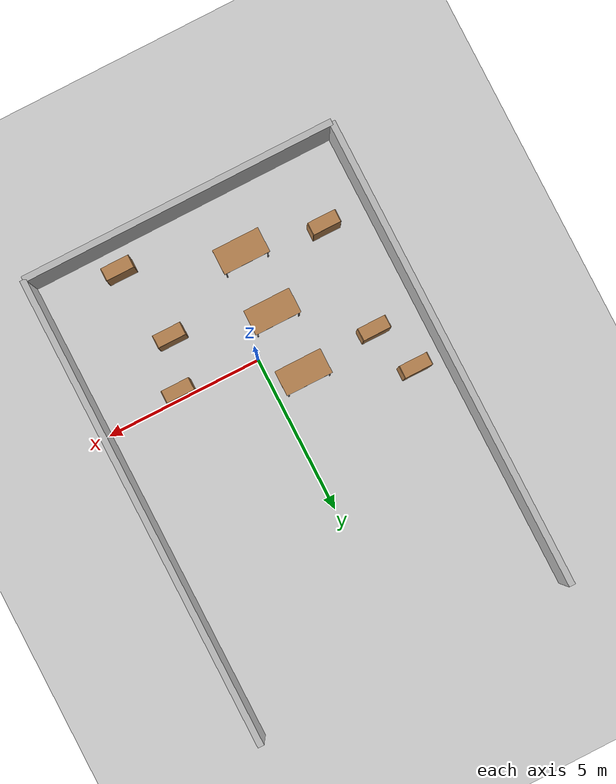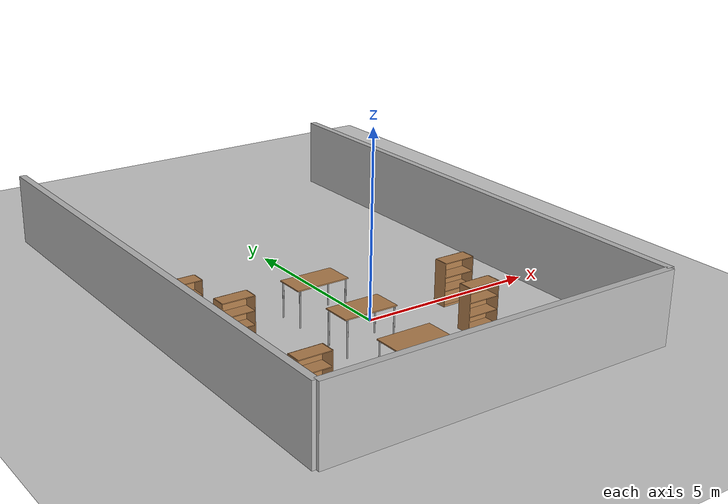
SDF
<sdf version="1.4">
 <world name="default">
  <model name="ground_plane">
   <static>1</static>
   <link name="link">
    <collision name="collision">
     <geometry>
      <plane><normal>0.000000 0.000000 1.000000</normal><size>100.000000 100.000000</size></plane>
     </geometry>
     <surface><friction><ode><mu>100.000000</mu><mu2>50.000000</mu2></ode></friction></surface>
    </collision>
    <visual name="visual">
     <cast_shadows>0</cast_shadows>
     <geometry>
      <plane><normal>0.000000 0.000000 1.000000</normal><size>100.000000 100.000000</size></plane>
     </geometry>
     <material>
      <script><uri>file://media/materials/scripts/gazebo.material</uri><name>Gazebo/Grey</name></script>
     </material>
    </visual>
    <velocity_decay><linear>0.000000</linear><angular>0.000000</angular></velocity_decay>
   </link>
  </model>
  <model name="wall_1_model">
   <pose>0.000000 -5.000000 1.000000 0.000000 0.000000 0.000000</pose>
   <static>1</static>
   <link name="wall_1_body">
    <inertial>
     <mass>1.000000</mass>
     <inertia>
      <ixx>1.000000</ixx>
      <ixy>0.000000</ixy>
      <ixz>0.000000</ixz>
      <iyy>1.000000</iyy>
      <iyz>0.000000</iyz>
      <izz>1.000000</izz>
     </inertia>
    </inertial>
    <collision name="collision">
     <geometry><box><size>10.000000 0.200000 2.000000</size></box></geometry>
    </collision>
    <visual name="visual"><geometry><box><size>10.000000 0.200000 2.000000</size></box></geometry></visual>
    <velocity_decay><linear>0.000000</linear><angular>0.000000</angular></velocity_decay>
   </link>
  </model>
  <model name="wall_3_model">
   <pose>-5.000000 2.500000 1.000000 0.000000 0.000000 0.000000</pose>
   <static>1</static>
   <link name="wall_3_body">
    <inertial>
     <mass>1.000000</mass>
     <inertia>
      <ixx>1.000000</ixx>
      <ixy>0.000000</ixy>
      <ixz>0.000000</ixz>
      <iyy>1.000000</iyy>
      <iyz>0.000000</iyz>
      <izz>1.000000</izz>
     </inertia>
    </inertial>
    <collision name="collision">
     <geometry><box><size>0.200000 15.000000 2.000000</size></box></geometry>
    </collision>
    <visual name="visual"><geometry><box><size>0.200000 15.000000 2.000000</size></box></geometry></visual>
    <velocity_decay><linear>0.000000</linear><angular>0.000000</angular></velocity_decay>
   </link>
  </model>
  <model name="wall_4_model">
   <pose>5.000000 2.500000 1.000000 0.000000 0.000000 0.000000</pose>
   <static>1</static>
   <link name="wall_4_body">
    <inertial>
     <mass>1.000000</mass>
     <inertia>
      <ixx>1.000000</ixx>
      <ixy>0.000000</ixy>
      <ixz>0.000000</ixz>
      <iyy>1.000000</iyy>
      <iyz>0.000000</iyz>
      <izz>1.000000</izz>
     </inertia>
    </inertial>
    <collision name="collision">
     <geometry><box><size>0.200000 15.000000 2.000000</size></box></geometry>
    </collision>
    <visual name="visual"><geometry><box><size>0.200000 15.000000 2.000000</size></box></geometry></visual>
    <velocity_decay><linear>0.000000</linear><angular>0.000000</angular></velocity_decay>
   </link>
  </model>
  <model name="bookshelf">
   <static>1</static>
   <link name="link">
    <inertial><mass>1.000000</mass></inertial>
    <collision name="back">
     <pose>0.000000 0.005000 0.600000 0.000000 0.000000 0.000000</pose>
     <geometry><box><size>0.900000 0.010000 1.200000</size></box></geometry>
    </collision>
    <visual name="visual1">
     <pose>0.000000 0.005000 0.600000 0.000000 0.000000 0.000000</pose>
     <geometry><box><size>0.900000 0.010000 1.200000</size></box></geometry>
     <material>
      <script><uri>file://media/materials/scripts/gazebo.material</uri><name>Gazebo/Wood</name></script>
     </material>
    </visual>
    <collision name="left_side">
     <pose>0.450000 -0.195000 0.600000 0.000000 0.000000 0.000000</pose>
     <geometry><box><size>0.020000 0.400000 1.200000</size></box></geometry>
    </collision>
    <visual name="visual2">
     <pose>0.450000 -0.195000 0.600000 0.000000 0.000000 0.000000</pose>
     <geometry><box><size>0.020000 0.400000 1.200000</size></box></geometry>
     <material>
      <script><uri>file://media/materials/scripts/gazebo.material</uri><name>Gazebo/Wood</name></script>
     </material>
    </visual>
    <collision name="right_side">
     <pose>-0.450000 -0.195000 0.600000 0.000000 0.000000 0.000000</pose>
     <geometry><box><size>0.020000 0.400000 1.200000</size></box></geometry>
    </collision>
    <visual name="visual3">
     <pose>-0.450000 -0.195000 0.600000 0.000000 0.000000 0.000000</pose>
     <geometry><box><size>0.020000 0.400000 1.200000</size></box></geometry>
     <material>
      <script><uri>file://media/materials/scripts/gazebo.material</uri><name>Gazebo/Wood</name></script>
     </material>
    </visual>
    <collision name="bottom">
     <pose>0.000000 -0.195000 0.030000 0.000000 0.000000 0.000000</pose>
     <geometry><box><size>0.880000 0.400000 0.060000</size></box></geometry>
    </collision>
    <visual name="visual4">
     <pose>0.000000 -0.195000 0.030000 0.000000 0.000000 0.000000</pose>
     <geometry><box><size>0.880000 0.400000 0.060000</size></box></geometry>
     <material>
      <script><uri>file://media/materials/scripts/gazebo.material</uri><name>Gazebo/Wood</name></script>
     </material>
    </visual>
    <collision name="top">
     <pose>0.000000 -0.195000 1.190000 0.000000 0.000000 0.000000</pose>
     <geometry><box><size>0.880000 0.400000 0.020000</size></box></geometry>
    </collision>
    <visual name="visual5">
     <pose>0.000000 -0.195000 1.190000 0.000000 0.000000 0.000000</pose>
     <geometry><box><size>0.880000 0.400000 0.020000</size></box></geometry>
     <material>
      <script><uri>file://media/materials/scripts/gazebo.material</uri><name>Gazebo/Wood</name></script>
     </material>
    </visual>
    <collision name="low_shelf">
     <pose>0.000000 -0.195000 0.430000 0.000000 0.000000 0.000000</pose>
     <geometry><box><size>0.880000 0.400000 0.020000</size></box></geometry>
    </collision>
    <visual name="visual6">
     <pose>0.000000 -0.195000 0.430000 0.000000 0.000000 0.000000</pose>
     <geometry><box><size>0.880000 0.400000 0.020000</size></box></geometry>
     <material>
      <script><uri>file://media/materials/scripts/gazebo.material</uri><name>Gazebo/Wood</name></script>
     </material>
    </visual>
    <collision name="high_shelf">
     <pose>0.000000 -0.195000 0.800000 0.000000 0.000000 0.000000</pose>
     <geometry><box><size>0.880000 0.400000 0.020000</size></box></geometry>
    </collision>
    <visual name="visual7">
     <pose>0.000000 -0.195000 0.800000 0.000000 0.000000 0.000000</pose>
     <geometry><box><size>0.880000 0.400000 0.020000</size></box></geometry>
     <material>
      <script><uri>file://media/materials/scripts/gazebo.material</uri><name>Gazebo/Wood</name></script>
     </material>
    </visual>
    <velocity_decay><linear>0.000000</linear><angular>0.000000</angular></velocity_decay>
   </link>
   <pose>2.000000 -1.554010 0.000000 0.000000 0.000000 0.000000</pose>
  </model>
  <model name="table">
   <static>1</static>
   <link name="link">
    <collision name="surface">
     <pose>0.000000 0.000000 1.000000 0.000000 0.000000 0.000000</pose>
     <geometry><box><size>1.500000 0.800000 0.030000</size></box></geometry>
    </collision>
    <visual name="visual1">
     <pose>0.000000 0.000000 1.000000 0.000000 0.000000 0.000000</pose>
     <geometry><box><size>1.500000 0.800000 0.030000</size></box></geometry>
     <material>
      <script><uri>file://media/materials/scripts/gazebo.material</uri><name>Gazebo/Wood</name></script>
     </material>
    </visual>
    <collision name="front_left_leg">
     <pose>0.680000 0.380000 0.500000 0.000000 0.000000 0.000000</pose>
     <geometry><cylinder><radius>0.020000</radius><length>1.000000</length></cylinder></geometry>
    </collision>
    <visual name="front_left_leg">
     <pose>0.680000 0.380000 0.500000 0.000000 0.000000 0.000000</pose>
     <geometry><cylinder><radius>0.020000</radius><length>1.000000</length></cylinder></geometry>
     <material>
      <script><uri>file://media/materials/scripts/gazebo.material</uri><name>Gazebo/Grey</name></script>
     </material>
    </visual>
    <collision name="front_right_leg">
     <pose>0.680000 -0.380000 0.500000 0.000000 0.000000 0.000000</pose>
     <geometry><cylinder><radius>0.020000</radius><length>1.000000</length></cylinder></geometry>
    </collision>
    <visual name="front_right_leg">
     <pose>0.680000 -0.380000 0.500000 0.000000 0.000000 0.000000</pose>
     <geometry><cylinder><radius>0.020000</radius><length>1.000000</length></cylinder></geometry>
     <material>
      <script><uri>file://media/materials/scripts/gazebo.material</uri><name>Gazebo/Grey</name></script>
     </material>
    </visual>
    <collision name="back_right_leg">
     <pose>-0.680000 -0.380000 0.500000 0.000000 0.000000 0.000000</pose>
     <geometry><cylinder><radius>0.020000</radius><length>1.000000</length></cylinder></geometry>
    </collision>
    <visual name="back_right_leg">
     <pose>-0.680000 -0.380000 0.500000 0.000000 0.000000 0.000000</pose>
     <geometry><cylinder><radius>0.020000</radius><length>1.000000</length></cylinder></geometry>
     <material>
      <script><uri>file://media/materials/scripts/gazebo.material</uri><name>Gazebo/Grey</name></script>
     </material>
    </visual>
    <collision name="back_left_leg">
     <pose>-0.680000 0.380000 0.500000 0.000000 0.000000 0.000000</pose>
     <geometry><cylinder><radius>0.020000</radius><length>1.000000</length></cylinder></geometry>
    </collision>
    <visual name="back_left_leg">
     <pose>-0.680000 0.380000 0.500000 0.000000 0.000000 0.000000</pose>
     <geometry><cylinder><radius>0.020000</radius><length>1.000000</length></cylinder></geometry>
     <material>
      <script><uri>file://media/materials/scripts/gazebo.material</uri><name>Gazebo/Grey</name></script>
     </material>
    </visual>
    <velocity_decay><linear>0.000000</linear><angular>0.000000</angular></velocity_decay>
   </link>
   <pose>-1.000000 -1.000000 0.000000 0.000000 0.000000 0.000000</pose>
  </model>
  <model name="bookshelf_2">
   <static>1</static>
   <link name="link">
    <inertial><mass>1.000000</mass></inertial>
    <collision name="back">
     <pose>0.000000 0.005000 0.600000 0.000000 0.000000 0.000000</pose>
     <geometry><box><size>0.900000 0.010000 1.200000</size></box></geometry>
    </collision>
    <visual name="visual1">
     <pose>0.000000 0.005000 0.600000 0.000000 0.000000 0.000000</pose>
     <geometry><box><size>0.900000 0.010000 1.200000</size></box></geometry>
     <material>
      <script><uri>file://media/materials/scripts/gazebo.material</uri><name>Gazebo/Wood</name></script>
     </material>
    </visual>
    <collision name="left_side">
     <pose>0.450000 -0.195000 0.600000 0.000000 0.000000 0.000000</pose>
     <geometry><box><size>0.020000 0.400000 1.200000</size></box></geometry>
    </collision>
    <visual name="visual2">
     <pose>0.450000 -0.195000 0.600000 0.000000 0.000000 0.000000</pose>
     <geometry><box><size>0.020000 0.400000 1.200000</size></box></geometry>
     <material>
      <script><uri>file://media/materials/scripts/gazebo.material</uri><name>Gazebo/Wood</name></script>
     </material>
    </visual>
    <collision name="right_side">
     <pose>-0.450000 -0.195000 0.600000 0.000000 0.000000 0.000000</pose>
     <geometry><box><size>0.020000 0.400000 1.200000</size></box></geometry>
    </collision>
    <visual name="visual3">
     <pose>-0.450000 -0.195000 0.600000 0.000000 0.000000 0.000000</pose>
     <geometry><box><size>0.020000 0.400000 1.200000</size></box></geometry>
     <material>
      <script><uri>file://media/materials/scripts/gazebo.material</uri><name>Gazebo/Wood</name></script>
     </material>
    </visual>
    <collision name="bottom">
     <pose>0.000000 -0.195000 0.030000 0.000000 0.000000 0.000000</pose>
     <geometry><box><size>0.880000 0.400000 0.060000</size></box></geometry>
    </collision>
    <visual name="visual4">
     <pose>0.000000 -0.195000 0.030000 0.000000 0.000000 0.000000</pose>
     <geometry><box><size>0.880000 0.400000 0.060000</size></box></geometry>
     <material>
      <script><uri>file://media/materials/scripts/gazebo.material</uri><name>Gazebo/Wood</name></script>
     </material>
    </visual>
    <collision name="top">
     <pose>0.000000 -0.195000 1.190000 0.000000 0.000000 0.000000</pose>
     <geometry><box><size>0.880000 0.400000 0.020000</size></box></geometry>
    </collision>
    <visual name="visual5">
     <pose>0.000000 -0.195000 1.190000 0.000000 0.000000 0.000000</pose>
     <geometry><box><size>0.880000 0.400000 0.020000</size></box></geometry>
     <material>
      <script><uri>file://media/materials/scripts/gazebo.material</uri><name>Gazebo/Wood</name></script>
     </material>
    </visual>
    <collision name="low_shelf">
     <pose>0.000000 -0.195000 0.430000 0.000000 0.000000 0.000000</pose>
     <geometry><box><size>0.880000 0.400000 0.020000</size></box></geometry>
    </collision>
    <visual name="visual6">
     <pose>0.000000 -0.195000 0.430000 0.000000 0.000000 0.000000</pose>
     <geometry><box><size>0.880000 0.400000 0.020000</size></box></geometry>
     <material>
      <script><uri>file://media/materials/scripts/gazebo.material</uri><name>Gazebo/Wood</name></script>
     </material>
    </visual>
    <collision name="high_shelf">
     <pose>0.000000 -0.195000 0.800000 0.000000 0.000000 0.000000</pose>
     <geometry><box><size>0.880000 0.400000 0.020000</size></box></geometry>
    </collision>
    <visual name="visual7">
     <pose>0.000000 -0.195000 0.800000 0.000000 0.000000 0.000000</pose>
     <geometry><box><size>0.880000 0.400000 0.020000</size></box></geometry>
     <material>
      <script><uri>file://media/materials/scripts/gazebo.material</uri><name>Gazebo/Wood</name></script>
     </material>
    </visual>
    <velocity_decay><linear>0.000000</linear><angular>0.000000</angular></velocity_decay>
   </link>
   <pose>-3.418490 1.000000 0.000000 0.000000 0.000000 0.000000</pose>
  </model>
  <model name="table_0">
   <static>1</static>
   <link name="link">
    <collision name="surface">
     <pose>0.000000 0.000000 1.000000 0.000000 0.000000 0.000000</pose>
     <geometry><box><size>1.500000 0.800000 0.030000</size></box></geometry>
    </collision>
    <visual name="visual1">
     <pose>0.000000 0.000000 1.000000 0.000000 0.000000 0.000000</pose>
     <geometry><box><size>1.500000 0.800000 0.030000</size></box></geometry>
     <material>
      <script><uri>file://media/materials/scripts/gazebo.material</uri><name>Gazebo/Wood</name></script>
     </material>
    </visual>
    <collision name="front_left_leg">
     <pose>0.680000 0.380000 0.500000 0.000000 0.000000 0.000000</pose>
     <geometry><cylinder><radius>0.020000</radius><length>1.000000</length></cylinder></geometry>
    </collision>
    <visual name="front_left_leg">
     <pose>0.680000 0.380000 0.500000 0.000000 0.000000 0.000000</pose>
     <geometry><cylinder><radius>0.020000</radius><length>1.000000</length></cylinder></geometry>
     <material>
      <script><uri>file://media/materials/scripts/gazebo.material</uri><name>Gazebo/Grey</name></script>
     </material>
    </visual>
    <collision name="front_right_leg">
     <pose>0.680000 -0.380000 0.500000 0.000000 0.000000 0.000000</pose>
     <geometry><cylinder><radius>0.020000</radius><length>1.000000</length></cylinder></geometry>
    </collision>
    <visual name="front_right_leg">
     <pose>0.680000 -0.380000 0.500000 0.000000 0.000000 0.000000</pose>
     <geometry><cylinder><radius>0.020000</radius><length>1.000000</length></cylinder></geometry>
     <material>
      <script><uri>file://media/materials/scripts/gazebo.material</uri><name>Gazebo/Grey</name></script>
     </material>
    </visual>
    <collision name="back_right_leg">
     <pose>-0.680000 -0.380000 0.500000 0.000000 0.000000 0.000000</pose>
     <geometry><cylinder><radius>0.020000</radius><length>1.000000</length></cylinder></geometry>
    </collision>
    <visual name="back_right_leg">
     <pose>-0.680000 -0.380000 0.500000 0.000000 0.000000 0.000000</pose>
     <geometry><cylinder><radius>0.020000</radius><length>1.000000</length></cylinder></geometry>
     <material>
      <script><uri>file://media/materials/scripts/gazebo.material</uri><name>Gazebo/Grey</name></script>
     </material>
    </visual>
    <collision name="back_left_leg">
     <pose>-0.680000 0.380000 0.500000 0.000000 0.000000 0.000000</pose>
     <geometry><cylinder><radius>0.020000</radius><length>1.000000</length></cylinder></geometry>
    </collision>
    <visual name="back_left_leg">
     <pose>-0.680000 0.380000 0.500000 0.000000 0.000000 0.000000</pose>
     <geometry><cylinder><radius>0.020000</radius><length>1.000000</length></cylinder></geometry>
     <material>
      <script><uri>file://media/materials/scripts/gazebo.material</uri><name>Gazebo/Grey</name></script>
     </material>
    </visual>
    <velocity_decay><linear>0.000000</linear><angular>0.000000</angular></velocity_decay>
   </link>
   <pose>-1.000000 1.000000 0.000000 0.000000 0.000000 0.000000</pose>
  </model>
  <model name="table_1">
   <static>1</static>
   <link name="link">
    <collision name="surface">
     <pose>0.000000 0.000000 1.000000 0.000000 0.000000 0.000000</pose>
     <geometry><box><size>1.500000 0.800000 0.030000</size></box></geometry>
    </collision>
    <visual name="visual1">
     <pose>0.000000 0.000000 1.000000 0.000000 0.000000 0.000000</pose>
     <geometry><box><size>1.500000 0.800000 0.030000</size></box></geometry>
     <material>
      <script><uri>file://media/materials/scripts/gazebo.material</uri><name>Gazebo/Wood</name></script>
     </material>
    </visual>
    <collision name="front_left_leg">
     <pose>0.680000 0.380000 0.500000 0.000000 0.000000 0.000000</pose>
     <geometry><cylinder><radius>0.020000</radius><length>1.000000</length></cylinder></geometry>
    </collision>
    <visual name="front_left_leg">
     <pose>0.680000 0.380000 0.500000 0.000000 0.000000 0.000000</pose>
     <geometry><cylinder><radius>0.020000</radius><length>1.000000</length></cylinder></geometry>
     <material>
      <script><uri>file://media/materials/scripts/gazebo.material</uri><name>Gazebo/Grey</name></script>
     </material>
    </visual>
    <collision name="front_right_leg">
     <pose>0.680000 -0.380000 0.500000 0.000000 0.000000 0.000000</pose>
     <geometry><cylinder><radius>0.020000</radius><length>1.000000</length></cylinder></geometry>
    </collision>
    <visual name="front_right_leg">
     <pose>0.680000 -0.380000 0.500000 0.000000 0.000000 0.000000</pose>
     <geometry><cylinder><radius>0.020000</radius><length>1.000000</length></cylinder></geometry>
     <material>
      <script><uri>file://media/materials/scripts/gazebo.material</uri><name>Gazebo/Grey</name></script>
     </material>
    </visual>
    <collision name="back_right_leg">
     <pose>-0.680000 -0.380000 0.500000 0.000000 0.000000 0.000000</pose>
     <geometry><cylinder><radius>0.020000</radius><length>1.000000</length></cylinder></geometry>
    </collision>
    <visual name="back_right_leg">
     <pose>-0.680000 -0.380000 0.500000 0.000000 0.000000 0.000000</pose>
     <geometry><cylinder><radius>0.020000</radius><length>1.000000</length></cylinder></geometry>
     <material>
      <script><uri>file://media/materials/scripts/gazebo.material</uri><name>Gazebo/Grey</name></script>
     </material>
    </visual>
    <collision name="back_left_leg">
     <pose>-0.680000 0.380000 0.500000 0.000000 0.000000 0.000000</pose>
     <geometry><cylinder><radius>0.020000</radius><length>1.000000</length></cylinder></geometry>
    </collision>
    <visual name="back_left_leg">
     <pose>-0.680000 0.380000 0.500000 0.000000 0.000000 0.000000</pose>
     <geometry><cylinder><radius>0.020000</radius><length>1.000000</length></cylinder></geometry>
     <material>
      <script><uri>file://media/materials/scripts/gazebo.material</uri><name>Gazebo/Grey</name></script>
     </material>
    </visual>
    <velocity_decay><linear>0.000000</linear><angular>0.000000</angular></velocity_decay>
   </link>
   <pose>-1.000000 -3.000000 0.000000 0.000000 0.000000 0.000000</pose>
  </model>
  <model name="bookshelf_3">
   <static>1</static>
   <link name="link">
    <inertial><mass>1.000000</mass></inertial>
    <collision name="back">
     <pose>0.000000 0.005000 0.600000 0.000000 0.000000 0.000000</pose>
     <geometry><box><size>0.900000 0.010000 1.200000</size></box></geometry>
    </collision>
    <visual name="visual1">
     <pose>0.000000 0.005000 0.600000 0.000000 0.000000 0.000000</pose>
     <geometry><box><size>0.900000 0.010000 1.200000</size></box></geometry>
     <material>
      <script><uri>file://media/materials/scripts/gazebo.material</uri><name>Gazebo/Wood</name></script>
     </material>
    </visual>
    <collision name="left_side">
     <pose>0.450000 -0.195000 0.600000 0.000000 0.000000 0.000000</pose>
     <geometry><box><size>0.020000 0.400000 1.200000</size></box></geometry>
    </collision>
    <visual name="visual2">
     <pose>0.450000 -0.195000 0.600000 0.000000 0.000000 0.000000</pose>
     <geometry><box><size>0.020000 0.400000 1.200000</size></box></geometry>
     <material>
      <script><uri>file://media/materials/scripts/gazebo.material</uri><name>Gazebo/Wood</name></script>
     </material>
    </visual>
    <collision name="right_side">
     <pose>-0.450000 -0.195000 0.600000 0.000000 0.000000 0.000000</pose>
     <geometry><box><size>0.020000 0.400000 1.200000</size></box></geometry>
    </collision>
    <visual name="visual3">
     <pose>-0.450000 -0.195000 0.600000 0.000000 0.000000 0.000000</pose>
     <geometry><box><size>0.020000 0.400000 1.200000</size></box></geometry>
     <material>
      <script><uri>file://media/materials/scripts/gazebo.material</uri><name>Gazebo/Wood</name></script>
     </material>
    </visual>
    <collision name="bottom">
     <pose>0.000000 -0.195000 0.030000 0.000000 0.000000 0.000000</pose>
     <geometry><box><size>0.880000 0.400000 0.060000</size></box></geometry>
    </collision>
    <visual name="visual4">
     <pose>0.000000 -0.195000 0.030000 0.000000 0.000000 0.000000</pose>
     <geometry><box><size>0.880000 0.400000 0.060000</size></box></geometry>
     <material>
      <script><uri>file://media/materials/scripts/gazebo.material</uri><name>Gazebo/Wood</name></script>
     </material>
    </visual>
    <collision name="top">
     <pose>0.000000 -0.195000 1.190000 0.000000 0.000000 0.000000</pose>
     <geometry><box><size>0.880000 0.400000 0.020000</size></box></geometry>
    </collision>
    <visual name="visual5">
     <pose>0.000000 -0.195000 1.190000 0.000000 0.000000 0.000000</pose>
     <geometry><box><size>0.880000 0.400000 0.020000</size></box></geometry>
     <material>
      <script><uri>file://media/materials/scripts/gazebo.material</uri><name>Gazebo/Wood</name></script>
     </material>
    </visual>
    <collision name="low_shelf">
     <pose>0.000000 -0.195000 0.430000 0.000000 0.000000 0.000000</pose>
     <geometry><box><size>0.880000 0.400000 0.020000</size></box></geometry>
    </collision>
    <visual name="visual6">
     <pose>0.000000 -0.195000 0.430000 0.000000 0.000000 0.000000</pose>
     <geometry><box><size>0.880000 0.400000 0.020000</size></box></geometry>
     <material>
      <script><uri>file://media/materials/scripts/gazebo.material</uri><name>Gazebo/Wood</name></script>
     </material>
    </visual>
    <collision name="high_shelf">
     <pose>0.000000 -0.195000 0.800000 0.000000 0.000000 0.000000</pose>
     <geometry><box><size>0.880000 0.400000 0.020000</size></box></geometry>
    </collision>
    <visual name="visual7">
     <pose>0.000000 -0.195000 0.800000 0.000000 0.000000 0.000000</pose>
     <geometry><box><size>0.880000 0.400000 0.020000</size></box></geometry>
     <material>
      <script><uri>file://media/materials/scripts/gazebo.material</uri><name>Gazebo/Wood</name></script>
     </material>
    </visual>
    <velocity_decay><linear>0.000000</linear><angular>0.000000</angular></velocity_decay>
   </link>
   <pose>2.450550 -4.000000 0.000000 0.000000 0.000000 0.000000</pose>
  </model>
  <model name="bookshelf_4">
   <static>1</static>
   <link name="link">
    <inertial><mass>1.000000</mass></inertial>
    <collision name="back">
     <pose>0.000000 0.005000 0.600000 0.000000 0.000000 0.000000</pose>
     <geometry><box><size>0.900000 0.010000 1.200000</size></box></geometry>
    </collision>
    <visual name="visual1">
     <pose>0.000000 0.005000 0.600000 0.000000 0.000000 0.000000</pose>
     <geometry><box><size>0.900000 0.010000 1.200000</size></box></geometry>
     <material>
      <script><uri>file://media/materials/scripts/gazebo.material</uri><name>Gazebo/Wood</name></script>
     </material>
    </visual>
    <collision name="left_side">
     <pose>0.450000 -0.195000 0.600000 0.000000 0.000000 0.000000</pose>
     <geometry><box><size>0.020000 0.400000 1.200000</size></box></geometry>
    </collision>
    <visual name="visual2">
     <pose>0.450000 -0.195000 0.600000 0.000000 0.000000 0.000000</pose>
     <geometry><box><size>0.020000 0.400000 1.200000</size></box></geometry>
     <material>
      <script><uri>file://media/materials/scripts/gazebo.material</uri><name>Gazebo/Wood</name></script>
     </material>
    </visual>
    <collision name="right_side">
     <pose>-0.450000 -0.195000 0.600000 0.000000 0.000000 0.000000</pose>
     <geometry><box><size>0.020000 0.400000 1.200000</size></box></geometry>
    </collision>
    <visual name="visual3">
     <pose>-0.450000 -0.195000 0.600000 0.000000 0.000000 0.000000</pose>
     <geometry><box><size>0.020000 0.400000 1.200000</size></box></geometry>
     <material>
      <script><uri>file://media/materials/scripts/gazebo.material</uri><name>Gazebo/Wood</name></script>
     </material>
    </visual>
    <collision name="bottom">
     <pose>0.000000 -0.195000 0.030000 0.000000 0.000000 0.000000</pose>
     <geometry><box><size>0.880000 0.400000 0.060000</size></box></geometry>
    </collision>
    <visual name="visual4">
     <pose>0.000000 -0.195000 0.030000 0.000000 0.000000 0.000000</pose>
     <geometry><box><size>0.880000 0.400000 0.060000</size></box></geometry>
     <material>
      <script><uri>file://media/materials/scripts/gazebo.material</uri><name>Gazebo/Wood</name></script>
     </material>
    </visual>
    <collision name="top">
     <pose>0.000000 -0.195000 1.190000 0.000000 0.000000 0.000000</pose>
     <geometry><box><size>0.880000 0.400000 0.020000</size></box></geometry>
    </collision>
    <visual name="visual5">
     <pose>0.000000 -0.195000 1.190000 0.000000 0.000000 0.000000</pose>
     <geometry><box><size>0.880000 0.400000 0.020000</size></box></geometry>
     <material>
      <script><uri>file://media/materials/scripts/gazebo.material</uri><name>Gazebo/Wood</name></script>
     </material>
    </visual>
    <collision name="low_shelf">
     <pose>0.000000 -0.195000 0.430000 0.000000 0.000000 0.000000</pose>
     <geometry><box><size>0.880000 0.400000 0.020000</size></box></geometry>
    </collision>
    <visual name="visual6">
     <pose>0.000000 -0.195000 0.430000 0.000000 0.000000 0.000000</pose>
     <geometry><box><size>0.880000 0.400000 0.020000</size></box></geometry>
     <material>
      <script><uri>file://media/materials/scripts/gazebo.material</uri><name>Gazebo/Wood</name></script>
     </material>
    </visual>
    <collision name="high_shelf">
     <pose>0.000000 -0.195000 0.800000 0.000000 0.000000 0.000000</pose>
     <geometry><box><size>0.880000 0.400000 0.020000</size></box></geometry>
    </collision>
    <visual name="visual7">
     <pose>0.000000 -0.195000 0.800000 0.000000 0.000000 0.000000</pose>
     <geometry><box><size>0.880000 0.400000 0.020000</size></box></geometry>
     <material>
      <script><uri>file://media/materials/scripts/gazebo.material</uri><name>Gazebo/Wood</name></script>
     </material>
    </visual>
    <velocity_decay><linear>0.000000</linear><angular>0.000000</angular></velocity_decay>
   </link>
   <pose>2.513160 0.000000 0.000000 0.000000 0.000000 0.000000</pose>
  </model>
  <model name="bookshelf_5">
   <static>1</static>
   <link name="link">
    <inertial><mass>1.000000</mass></inertial>
    <collision name="back">
     <pose>0.000000 0.005000 0.600000 0.000000 0.000000 0.000000</pose>
     <geometry><box><size>0.900000 0.010000 1.200000</size></box></geometry>
    </collision>
    <visual name="visual1">
     <pose>0.000000 0.005000 0.600000 0.000000 0.000000 0.000000</pose>
     <geometry><box><size>0.900000 0.010000 1.200000</size></box></geometry>
     <material>
      <script><uri>file://media/materials/scripts/gazebo.material</uri><name>Gazebo/Wood</name></script>
     </material>
    </visual>
    <collision name="left_side">
     <pose>0.450000 -0.195000 0.600000 0.000000 0.000000 0.000000</pose>
     <geometry><box><size>0.020000 0.400000 1.200000</size></box></geometry>
    </collision>
    <visual name="visual2">
     <pose>0.450000 -0.195000 0.600000 0.000000 0.000000 0.000000</pose>
     <geometry><box><size>0.020000 0.400000 1.200000</size></box></geometry>
     <material>
      <script><uri>file://media/materials/scripts/gazebo.material</uri><name>Gazebo/Wood</name></script>
     </material>
    </visual>
    <collision name="right_side">
     <pose>-0.450000 -0.195000 0.600000 0.000000 0.000000 0.000000</pose>
     <geometry><box><size>0.020000 0.400000 1.200000</size></box></geometry>
    </collision>
    <visual name="visual3">
     <pose>-0.450000 -0.195000 0.600000 0.000000 0.000000 0.000000</pose>
     <geometry><box><size>0.020000 0.400000 1.200000</size></box></geometry>
     <material>
      <script><uri>file://media/materials/scripts/gazebo.material</uri><name>Gazebo/Wood</name></script>
     </material>
    </visual>
    <collision name="bottom">
     <pose>0.000000 -0.195000 0.030000 0.000000 0.000000 0.000000</pose>
     <geometry><box><size>0.880000 0.400000 0.060000</size></box></geometry>
    </collision>
    <visual name="visual4">
     <pose>0.000000 -0.195000 0.030000 0.000000 0.000000 0.000000</pose>
     <geometry><box><size>0.880000 0.400000 0.060000</size></box></geometry>
     <material>
      <script><uri>file://media/materials/scripts/gazebo.material</uri><name>Gazebo/Wood</name></script>
     </material>
    </visual>
    <collision name="top">
     <pose>0.000000 -0.195000 1.190000 0.000000 0.000000 0.000000</pose>
     <geometry><box><size>0.880000 0.400000 0.020000</size></box></geometry>
    </collision>
    <visual name="visual5">
     <pose>0.000000 -0.195000 1.190000 0.000000 0.000000 0.000000</pose>
     <geometry><box><size>0.880000 0.400000 0.020000</size></box></geometry>
     <material>
      <script><uri>file://media/materials/scripts/gazebo.material</uri><name>Gazebo/Wood</name></script>
     </material>
    </visual>
    <collision name="low_shelf">
     <pose>0.000000 -0.195000 0.430000 0.000000 0.000000 0.000000</pose>
     <geometry><box><size>0.880000 0.400000 0.020000</size></box></geometry>
    </collision>
    <visual name="visual6">
     <pose>0.000000 -0.195000 0.430000 0.000000 0.000000 0.000000</pose>
     <geometry><box><size>0.880000 0.400000 0.020000</size></box></geometry>
     <material>
      <script><uri>file://media/materials/scripts/gazebo.material</uri><name>Gazebo/Wood</name></script>
     </material>
    </visual>
    <collision name="high_shelf">
     <pose>0.000000 -0.195000 0.800000 0.000000 0.000000 0.000000</pose>
     <geometry><box><size>0.880000 0.400000 0.020000</size></box></geometry>
    </collision>
    <visual name="visual7">
     <pose>0.000000 -0.195000 0.800000 0.000000 0.000000 0.000000</pose>
     <geometry><box><size>0.880000 0.400000 0.020000</size></box></geometry>
     <material>
      <script><uri>file://media/materials/scripts/gazebo.material</uri><name>Gazebo/Wood</name></script>
     </material>
    </visual>
    <velocity_decay><linear>0.000000</linear><angular>0.000000</angular></velocity_decay>
   </link>
   <pose>-3.539290 -2.422220 0.000000 0.000000 0.000000 0.000000</pose>
  </model>
  <model name="bookshelf_6">
   <static>1</static>
   <link name="link">
    <inertial><mass>1.000000</mass></inertial>
    <collision name="back">
     <pose>0.000000 0.005000 0.600000 0.000000 0.000000 0.000000</pose>
     <geometry><box><size>0.900000 0.010000 1.200000</size></box></geometry>
    </collision>
    <visual name="visual1">
     <pose>0.000000 0.005000 0.600000 0.000000 0.000000 0.000000</pose>
     <geometry><box><size>0.900000 0.010000 1.200000</size></box></geometry>
     <material>
      <script><uri>file://media/materials/scripts/gazebo.material</uri><name>Gazebo/Wood</name></script>
     </material>
    </visual>
    <collision name="left_side">
     <pose>0.450000 -0.195000 0.600000 0.000000 0.000000 0.000000</pose>
     <geometry><box><size>0.020000 0.400000 1.200000</size></box></geometry>
    </collision>
    <visual name="visual2">
     <pose>0.450000 -0.195000 0.600000 0.000000 0.000000 0.000000</pose>
     <geometry><box><size>0.020000 0.400000 1.200000</size></box></geometry>
     <material>
      <script><uri>file://media/materials/scripts/gazebo.material</uri><name>Gazebo/Wood</name></script>
     </material>
    </visual>
    <collision name="right_side">
     <pose>-0.450000 -0.195000 0.600000 0.000000 0.000000 0.000000</pose>
     <geometry><box><size>0.020000 0.400000 1.200000</size></box></geometry>
    </collision>
    <visual name="visual3">
     <pose>-0.450000 -0.195000 0.600000 0.000000 0.000000 0.000000</pose>
     <geometry><box><size>0.020000 0.400000 1.200000</size></box></geometry>
     <material>
      <script><uri>file://media/materials/scripts/gazebo.material</uri><name>Gazebo/Wood</name></script>
     </material>
    </visual>
    <collision name="bottom">
     <pose>0.000000 -0.195000 0.030000 0.000000 0.000000 0.000000</pose>
     <geometry><box><size>0.880000 0.400000 0.060000</size></box></geometry>
    </collision>
    <visual name="visual4">
     <pose>0.000000 -0.195000 0.030000 0.000000 0.000000 0.000000</pose>
     <geometry><box><size>0.880000 0.400000 0.060000</size></box></geometry>
     <material>
      <script><uri>file://media/materials/scripts/gazebo.material</uri><name>Gazebo/Wood</name></script>
     </material>
    </visual>
    <collision name="top">
     <pose>0.000000 -0.195000 1.190000 0.000000 0.000000 0.000000</pose>
     <geometry><box><size>0.880000 0.400000 0.020000</size></box></geometry>
    </collision>
    <visual name="visual5">
     <pose>0.000000 -0.195000 1.190000 0.000000 0.000000 0.000000</pose>
     <geometry><box><size>0.880000 0.400000 0.020000</size></box></geometry>
     <material>
      <script><uri>file://media/materials/scripts/gazebo.material</uri><name>Gazebo/Wood</name></script>
     </material>
    </visual>
    <collision name="low_shelf">
     <pose>0.000000 -0.195000 0.430000 0.000000 0.000000 0.000000</pose>
     <geometry><box><size>0.880000 0.400000 0.020000</size></box></geometry>
    </collision>
    <visual name="visual6">
     <pose>0.000000 -0.195000 0.430000 0.000000 0.000000 0.000000</pose>
     <geometry><box><size>0.880000 0.400000 0.020000</size></box></geometry>
     <material>
      <script><uri>file://media/materials/scripts/gazebo.material</uri><name>Gazebo/Wood</name></script>
     </material>
    </visual>
    <collision name="high_shelf">
     <pose>0.000000 -0.195000 0.800000 0.000000 0.000000 0.000000</pose>
     <geometry><box><size>0.880000 0.400000 0.020000</size></box></geometry>
    </collision>
    <visual name="visual7">
     <pose>0.000000 -0.195000 0.800000 0.000000 0.000000 0.000000</pose>
     <geometry><box><size>0.880000 0.400000 0.020000</size></box></geometry>
     <material>
      <script><uri>file://media/materials/scripts/gazebo.material</uri><name>Gazebo/Wood</name></script>
     </material>
    </visual>
    <velocity_decay><linear>0.000000</linear><angular>0.000000</angular></velocity_decay>
   </link>
   <pose>-4.000000 2.525350 0.000000 0.000000 0.000000 0.000000</pose>
  </model>
 </world>
</sdf>
